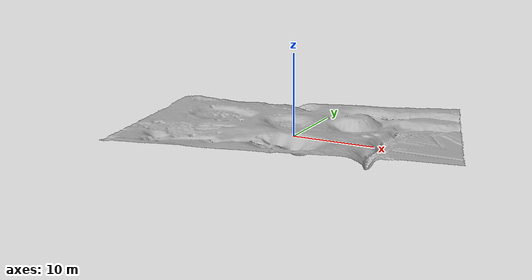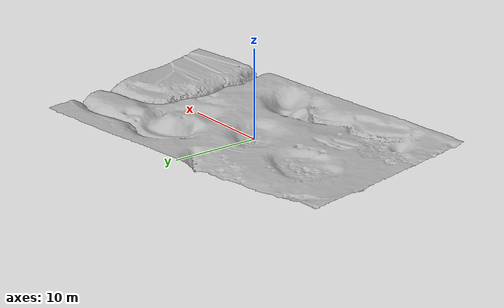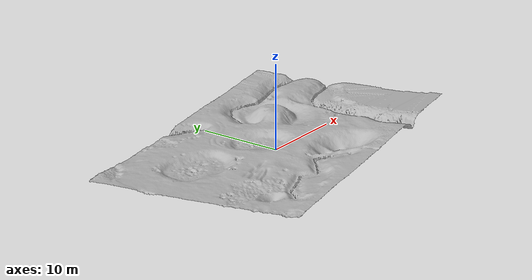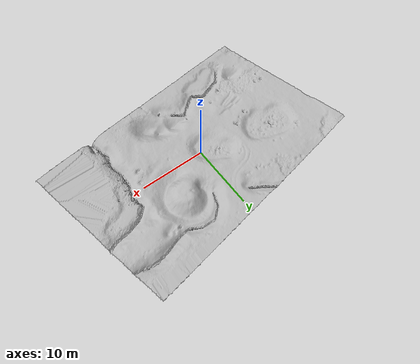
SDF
<?xml version="1.0"?>
<sdf version="1.7">
  <model name="mars_yard">
    <!-- Static environment model. Rover will be URDF/Xacro later; this remains SDF. -->
    <static>true</static>
    <link name="terrain_link">

      <!-- What you SEE: textured Mars Yard surface only. -->
      <visual name="mars_yard_visual_textured">
        <geometry>
          <mesh>
            <uri>model://mars_yard/meshes/mars_yard_only_textured.obj</uri>
            <scale>1 1 1</scale>
          </mesh>
        </geometry>
        <cast_shadows>false</cast_shadows>
      </visual>

      <collision name="mars_yard_collision_lowpoly_invisible">
        <geometry>
          <mesh>
            <uri>model://mars_yard/meshes/mars_yard_collision_lowpoly.obj</uri>
            <scale>1 1 1</scale>
          </mesh>
        </geometry>
        <surface>
          <!-- Sand / compact soil style friction.
               mu/mu2 around 0.9-1.1 gives climbing grip without making it unrealistically sticky. -->
          <friction>
            <ode>
              <mu>1.05</mu>
              <mu2>1.05</mu2>
              <slip1>0.015</slip1>
              <slip2>0.015</slip2>
            </ode>
          </friction>
          <bounce>
            <restitution_coefficient>0.0</restitution_coefficient>
            <threshold>100000</threshold>
          </bounce>
          <contact>
            <ode>
              <kp>10000000</kp>
              <kd>1</kd>
              <max_vel>0.1</max_vel>
              <min_depth>0.001</min_depth>
            </ode>
          </contact>
        </surface>
      </collision>

    </link>
  </model>
</sdf>
